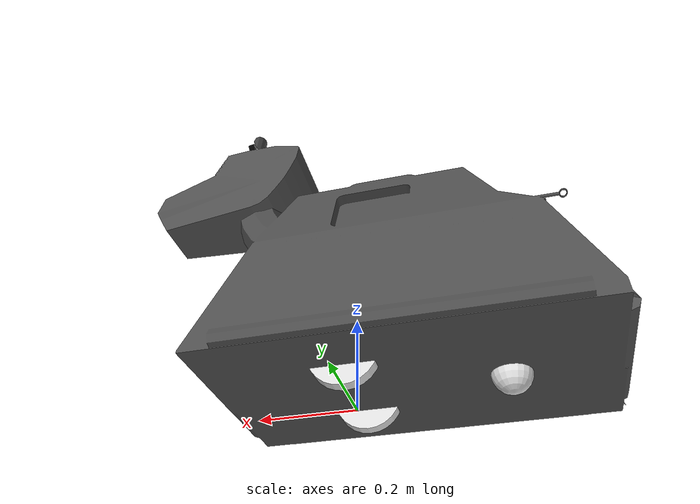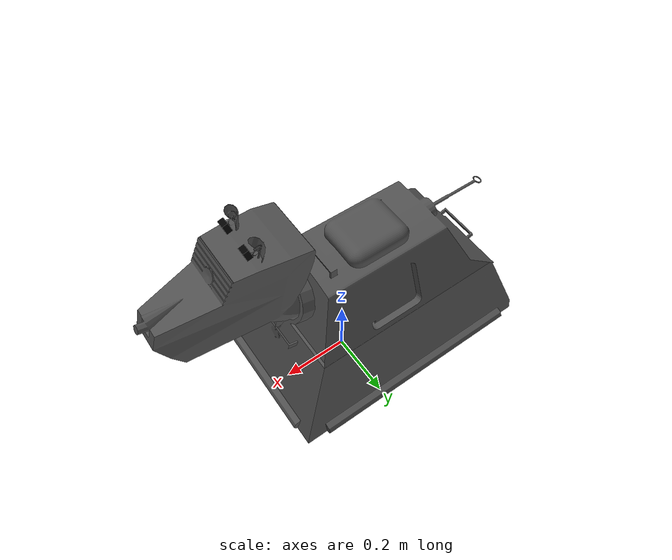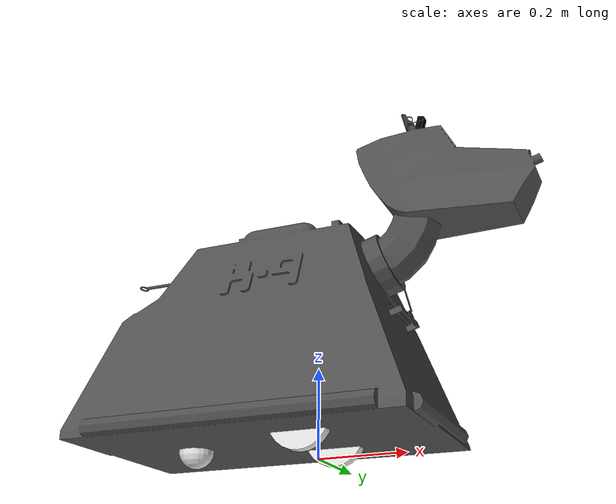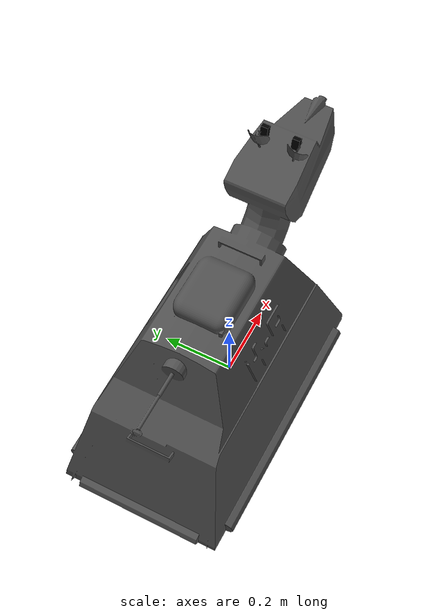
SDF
<sdf version='1.11'>
  <model name='k9_robot'>
    <link name='base_footprint'>
      <inertial>
        <pose>-0.044785740007202028 0 0.2252066258552394 0 0 0</pose>
        <mass>27.77</mass>
        <inertia>
          <ixx>0.8520626115808434</ixx>
          <ixy>0</ixy>
          <ixz>-0.033647700576161343</ixz>
          <iyy>2.5247111867338869</iyy>
          <iyz>0</iyz>
          <izz>1.773259575153042</izz>
        </inertia>
      </inertial>
      <collision name='base_footprint_fixed_joint_lump__base_link_collision'>
        <pose>0 0 0.50939999999999996 0 0 0</pose>
        <geometry>
          <box>
            <size>1.05 0.48999999999999999 0.73999999999999999</size>
          </box>
        </geometry>
      </collision>
      <collision name='base_footprint_fixed_joint_lump__ball_caster_link_collision_1'>
        <pose>-0.29999999999999999 0 0.040000000000000001 0 0 0</pose>
        <geometry>
          <sphere>
            <radius>0.040000000000000001</radius>
          </sphere>
        </geometry>
        <surface>
          <contact>
            <ode/>
          </contact>
          <friction>
            <ode>
              <mu>0.20000000000000001</mu>
              <mu2>0.20000000000000001</mu2>
            </ode>
          </friction>
        </surface>
      </collision>
      <collision name='base_footprint_fixed_joint_lump__battery_link_collision_2'>
        <pose>0 0 0.24940000000000001 0 0 0</pose>
        <geometry>
          <box>
            <size>0.25 0.20000000000000001 0.25</size>
          </box>
        </geometry>
      </collision>
      <collision name='base_footprint_fixed_joint_lump__motors_link_collision_3'>
        <pose>0 0 0.1694 0 0 0</pose>
        <geometry>
          <box>
            <size>0.20000000000000001 0.20000000000000001 0.10000000000000001</size>
          </box>
        </geometry>
      </collision>
      <visual name='base_footprint_fixed_joint_lump__base_link_visual'>
        <pose>-0.5 1.905 0 0 0 3.1415926535897931</pose>
        <geometry>
          <mesh>
            <scale>0.01 0.01 0.01</scale>
            <uri>file:///home/hopkira/Documents/GitHub/k9-gazebo/src/k9_description/urdf/k9.stl</uri>
          </mesh>
        </geometry>
        <material>
          <diffuse>0.3125 0.3125 0.3125 1</diffuse>
          <ambient>0.3125 0.3125 0.3125 1</ambient>
        </material>
      </visual>
      <visual name='base_footprint_fixed_joint_lump__ball_caster_link_visual_1'>
        <pose>-0.29999999999999999 0 0.040000000000000001 0 0 0</pose>
        <geometry>
          <sphere>
            <radius>0.040000000000000001</radius>
          </sphere>
        </geometry>
        <material>
          <diffuse>0.875 0.875 0.875 1</diffuse>
          <ambient>0.875 0.875 0.875 1</ambient>
        </material>
      </visual>
      <sensor name='ld06_lidar' type='gpu_lidar'>
        <update_rate>10</update_rate>
        <always_on>true</always_on>
        <topic>/ld06/scan</topic>
        <visualize>true</visualize>
        <lidar>
          <scan>
            <horizontal>
              <samples>360</samples>
              <min_angle>-3.1415899999999999</min_angle>
              <max_angle>3.1415899999999999</max_angle>
              <resolution>1</resolution>
            </horizontal>
          </scan>
          <range>
            <min>0.02</min>
            <max>12</max>
          </range>
        </lidar>
        <pose>-0.112 0 0.59940000000000004 0 0 0</pose>
        <gz_frame_id>base_laser</gz_frame_id>
        <frame_id>base_laser</frame_id>
      </sensor>
      <sensor name='imu_link_sensor' type='imu'>
        <topic>/k9/imu</topic>
        <always_on>true</always_on>
        <visualize>false</visualize>
        <update_rate>200</update_rate>
        <imu>
          <angular_velocity>
            <x>
              <noise type='gaussian'>
                <mean>0</mean>
                <stddev>0.001</stddev>
                <bias_mean>0</bias_mean>
                <bias_stddev>0</bias_stddev>
              </noise>
            </x>
            <y>
              <noise type='gaussian'>
                <mean>0</mean>
                <stddev>0.001</stddev>
                <bias_mean>0</bias_mean>
                <bias_stddev>0</bias_stddev>
              </noise>
            </y>
            <z>
              <noise type='gaussian'>
                <mean>0</mean>
                <stddev>0.001</stddev>
                <bias_mean>0</bias_mean>
                <bias_stddev>0</bias_stddev>
              </noise>
            </z>
          </angular_velocity>
          <linear_acceleration>
            <x>
              <noise type='gaussian'>
                <mean>0</mean>
                <stddev>0.01</stddev>
                <bias_mean>0</bias_mean>
                <bias_stddev>0</bias_stddev>
              </noise>
            </x>
            <y>
              <noise type='gaussian'>
                <mean>0</mean>
                <stddev>0.01</stddev>
                <bias_mean>0</bias_mean>
                <bias_stddev>0</bias_stddev>
              </noise>
            </y>
            <z>
              <noise type='gaussian'>
                <mean>0</mean>
                <stddev>0.01</stddev>
                <bias_mean>0</bias_mean>
                <bias_stddev>0</bias_stddev>
              </noise>
            </z>
          </linear_acceleration>
        </imu>
        <pose>0 0 0.22939999999999999 0 0 0</pose>
      </sensor>
      <sensor name='oakd_link_rgbd' type='rgbd_camera'>
        <always_on>true</always_on>
        <visualize>false</visualize>
        <update_rate>30</update_rate>
        <topic>/oak</topic>
        <camera>
          <horizontal_fov>1.3962634</horizontal_fov>
          <image>
            <width>640</width>
            <height>400</height>
          </image>
          <clip>
            <near>0.20000000000000001</near>
            <far>8</far>
          </clip>
          <noise>
            <type>gaussian</type>
            <mean>0</mean>
            <stddev>0.0030000000000000001</stddev>
          </noise>
        </camera>
        <pose>0.26000000000000001 0 0.32440000000000002 0 0 0</pose>
      </sensor>
    </link>
    <joint name='drivewhl_l_joint' type='revolute'>
      <pose relative_to='base_footprint'>0 0.1011 0.069400000000000003 0 0 0</pose>
      <parent>base_footprint</parent>
      <child>drivewhl_l_link</child>
      <axis>
        <xyz>0 1 0</xyz>
        <limit>
          <lower>-inf</lower>
          <upper>inf</upper>
        </limit>
        <dynamics>
          <damping>0.050000000000000003</damping>
          <friction>0</friction>
          <spring_reference>0</spring_reference>
          <spring_stiffness>0</spring_stiffness>
        </dynamics>
      </axis>
    </joint>
    <link name='drivewhl_l_link'>
      <pose relative_to='drivewhl_l_joint'>0 0 0 0 0 0</pose>
      <inertial>
        <pose>0 0 0 0 0 0</pose>
        <mass>1</mass>
        <inertia>
          <ixx>0.002</ixx>
          <ixy>0</ixy>
          <ixz>0</ixz>
          <iyy>0.002</iyy>
          <iyz>0</iyz>
          <izz>0.0040000000000000001</izz>
        </inertia>
      </inertial>
      <collision name='drivewhl_l_link_collision'>
        <pose>0 0 0 1.5707963267948959 0 0</pose>
        <geometry>
          <cylinder>
            <length>0.025000000000000001</length>
            <radius>0.069400000000000003</radius>
          </cylinder>
        </geometry>
        <surface>
          <contact>
            <ode/>
          </contact>
          <friction>
            <ode>
              <mu>0.90000000000000002</mu>
              <mu2>0.69999999999999996</mu2>
            </ode>
          </friction>
        </surface>
      </collision>
      <visual name='drivewhl_l_link_visual'>
        <pose>0 0 0 1.5707963267948959 0 0</pose>
        <geometry>
          <cylinder>
            <length>0.025000000000000001</length>
            <radius>0.069400000000000003</radius>
          </cylinder>
        </geometry>
        <material>
          <diffuse>0.875 0.875 0.875 1</diffuse>
          <ambient>0.875 0.875 0.875 1</ambient>
        </material>
      </visual>
    </link>
    <joint name='drivewhl_r_joint' type='revolute'>
      <pose relative_to='base_footprint'>0 -0.1011 0.069400000000000003 0 0 0</pose>
      <parent>base_footprint</parent>
      <child>drivewhl_r_link</child>
      <axis>
        <xyz>0 1 0</xyz>
        <limit>
          <lower>-inf</lower>
          <upper>inf</upper>
        </limit>
        <dynamics>
          <damping>0.050000000000000003</damping>
          <friction>0</friction>
          <spring_reference>0</spring_reference>
          <spring_stiffness>0</spring_stiffness>
        </dynamics>
      </axis>
    </joint>
    <link name='drivewhl_r_link'>
      <pose relative_to='drivewhl_r_joint'>0 0 0 0 0 0</pose>
      <inertial>
        <pose>0 0 0 0 0 0</pose>
        <mass>1</mass>
        <inertia>
          <ixx>0.002</ixx>
          <ixy>0</ixy>
          <ixz>0</ixz>
          <iyy>0.002</iyy>
          <iyz>0</iyz>
          <izz>0.0040000000000000001</izz>
        </inertia>
      </inertial>
      <collision name='drivewhl_r_link_collision'>
        <pose>0 0 0 1.5707963267948959 0 0</pose>
        <geometry>
          <cylinder>
            <length>0.025000000000000001</length>
            <radius>0.069400000000000003</radius>
          </cylinder>
        </geometry>
        <surface>
          <contact>
            <ode/>
          </contact>
          <friction>
            <ode>
              <mu>0.90000000000000002</mu>
              <mu2>0.69999999999999996</mu2>
            </ode>
          </friction>
        </surface>
      </collision>
      <visual name='drivewhl_r_link_visual'>
        <pose>0 0 0 1.5707963267948959 0 0</pose>
        <geometry>
          <cylinder>
            <length>0.025000000000000001</length>
            <radius>0.069400000000000003</radius>
          </cylinder>
        </geometry>
        <material>
          <diffuse>0.875 0.875 0.875 1</diffuse>
          <ambient>0.875 0.875 0.875 1</ambient>
        </material>
      </visual>
    </link>
    <joint name='l_ear_joint' type='revolute'>
      <pose relative_to='base_footprint'>0.27000000000000002 0.042500000000000003 0.73940000000000006 0 0.25000000000000017 0</pose>
      <parent>base_footprint</parent>
      <child>l_ear_link</child>
      <axis>
        <xyz>0 0 1</xyz>
        <limit>
          <lower>-0.20000000000000001</lower>
          <upper>0.59999999999999998</upper>
          <effort>2</effort>
          <velocity>10</velocity>
        </limit>
        <dynamics>
          <damping>0.01</damping>
          <friction>0.01</friction>
          <spring_reference>0</spring_reference>
          <spring_stiffness>0</spring_stiffness>
        </dynamics>
      </axis>
    </joint>
    <link name='l_ear_link'>
      <pose relative_to='l_ear_joint'>0 0 0 0 0 0</pose>
      <inertial>
        <pose>0 0 0 0 0 0</pose>
        <mass>0.050000000000000003</mass>
        <inertia>
          <ixx>0.0001</ixx>
          <ixy>0</ixy>
          <ixz>0</ixz>
          <iyy>0.0001</iyy>
          <iyz>0</iyz>
          <izz>0.0001</izz>
        </inertia>
      </inertial>
      <visual name='l_ear_link_fixed_joint_lump__l_ear_visual_visual'>
        <pose>0 0 0 0 0 0</pose>
        <geometry>
          <box>
            <size>0.014999999999999999 0.02 0.029999999999999999</size>
          </box>
        </geometry>
        <material>
          <diffuse>0 0 0 1</diffuse>
          <ambient>0 0 0 1</ambient>
        </material>
      </visual>
      <sensor name='l_ear_tof' type='gpu_lidar'>
        <pose>0.0074999999999999997 0 0 0 0 0</pose>
        <update_rate>30</update_rate>
        <always_on>true</always_on>
        <visualize>true</visualize>
        <topic>/l_ear/scan</topic>
        <lidar>
          <scan>
            <horizontal>
              <samples>1</samples>
              <resolution>1</resolution>
              <min_angle>0</min_angle>
              <max_angle>0</max_angle>
            </horizontal>
          </scan>
          <range>
            <min>0.02</min>
            <max>2</max>
            <resolution>0.001</resolution>
          </range>
        </lidar>
        <gz_frame_id>l_ear_link</gz_frame_id>
        <frame_id>l_ear_link</frame_id>
      </sensor>
    </link>
    <joint name='r_ear_joint' type='revolute'>
      <pose relative_to='base_footprint'>0.27000000000000002 -0.042500000000000003 0.73940000000000006 0 0.25000000000000017 0</pose>
      <parent>base_footprint</parent>
      <child>r_ear_link</child>
      <axis>
        <xyz>0 0 1</xyz>
        <limit>
          <lower>-0.59999999999999998</lower>
          <upper>0.20000000000000001</upper>
          <effort>2</effort>
          <velocity>10</velocity>
        </limit>
        <dynamics>
          <damping>0.01</damping>
          <friction>0.01</friction>
          <spring_reference>0</spring_reference>
          <spring_stiffness>0</spring_stiffness>
        </dynamics>
      </axis>
    </joint>
    <link name='r_ear_link'>
      <pose relative_to='r_ear_joint'>0 0 0 0 0 0</pose>
      <inertial>
        <pose>0 0 0 0 0 0</pose>
        <mass>0.050000000000000003</mass>
        <inertia>
          <ixx>0.0001</ixx>
          <ixy>0</ixy>
          <ixz>0</ixz>
          <iyy>0.0001</iyy>
          <iyz>0</iyz>
          <izz>0.0001</izz>
        </inertia>
      </inertial>
      <visual name='r_ear_link_fixed_joint_lump__r_ear_visual_visual'>
        <pose>0 0 0 0 0 0</pose>
        <geometry>
          <box>
            <size>0.014999999999999999 0.02 0.029999999999999999</size>
          </box>
        </geometry>
        <material>
          <diffuse>0 0 0 1</diffuse>
          <ambient>0 0 0 1</ambient>
        </material>
      </visual>
      <sensor name='r_ear_tof' type='gpu_lidar'>
        <pose>0.0074999999999999997 0 0 0 0 0</pose>
        <update_rate>30</update_rate>
        <always_on>true</always_on>
        <visualize>true</visualize>
        <topic>/r_ear/scan</topic>
        <lidar>
          <scan>
            <horizontal>
              <samples>1</samples>
              <resolution>1</resolution>
              <min_angle>0</min_angle>
              <max_angle>0</max_angle>
            </horizontal>
          </scan>
          <range>
            <min>0.02</min>
            <max>2</max>
            <resolution>0.001</resolution>
          </range>
        </lidar>
        <gz_frame_id>r_ear_link</gz_frame_id>
        <frame_id>r_ear_link</frame_id>
      </sensor>
    </link>
    <plugin name='gz::sim::systems::DiffDrive' filename='gz-sim-diff-drive-system'>
      <left_joint>drivewhl_l_joint</left_joint>
      <right_joint>drivewhl_r_joint</right_joint>
      <wheel_separation>0.2022</wheel_separation>
      <wheel_radius>0.0694</wheel_radius>
      <max_linear_velocity>1.4</max_linear_velocity>
      <max_angular_velocity>0.63</max_angular_velocity>
      <max_linear_acceleration>0.28</max_linear_acceleration>
      <max_angular_acceleration>0.21</max_angular_acceleration>
      <topic>/cmd_vel</topic>
      <odom_topic>/odom</odom_topic>
      <frame_id>odom</frame_id>
      <child_frame_id>base_footprint</child_frame_id>
    </plugin>
    <plugin name='gz_ros2_control::GazeboSimROS2ControlPlugin' filename='/opt/ros/jazzy/lib/libgz_ros2_control-system.so'>
      <parameters>/home/hopkira/Documents/GitHub/k9-gazebo/src/k9_robot/src/description/ear_controllers.yaml</parameters>
    </plugin>
    <frame name='3dcam_joint' attached_to='base_link'>
      <pose>0.20599999999999999 0 0.255 0 0 0</pose>
    </frame>
    <frame name='3dcam_link' attached_to='3dcam_joint'>
      <pose>0 0 0 0 0 0</pose>
    </frame>
    <frame name='ball_caster_joint' attached_to='base_link'>
      <pose>-0.29999999999999999 0 -0.029399999999999999 0 0 0</pose>
    </frame>
    <frame name='ball_caster_link' attached_to='ball_caster_joint'>
      <pose>0 0 0 0 0 0</pose>
    </frame>
    <frame name='base_laser_joint' attached_to='base_link'>
      <pose>-0.112 0 0.53000000000000003 0 0 0</pose>
    </frame>
    <frame name='base_laser' attached_to='base_laser_joint'>
      <pose>0 0 0 0 0 0</pose>
    </frame>
    <frame name='battery_joint' attached_to='base_link'>
      <pose>0 0 0.17999999999999999 0 0 0</pose>
    </frame>
    <frame name='battery_link' attached_to='battery_joint'>
      <pose>0 0 0 0 0 0</pose>
    </frame>
    <frame name='eyecam_joint' attached_to='base_link'>
      <pose>0.36599999999999999 0 0.67000000000000004 0 0 0</pose>
    </frame>
    <frame name='eyecam_link' attached_to='eyecam_joint'>
      <pose>0 0 0 0 0 0</pose>
    </frame>
    <frame name='imu_link_joint' attached_to='base_link'>
      <pose>0 0 0.16 0 0 0</pose>
    </frame>
    <frame name='imu_link' attached_to='imu_link_joint'>
      <pose>0 0 0 0 0 0</pose>
    </frame>
    <frame name='motors_joint' attached_to='base_link'>
      <pose>0 0 0.10000000000000001 0 0 0</pose>
    </frame>
    <frame name='motors_link' attached_to='motors_joint'>
      <pose>0 0 0 0 0 0</pose>
    </frame>
    <frame name='camera_depth_frame_joint' attached_to='oakd_link'>
      <pose>0 0 0 -1.5707963267948959 -5.5511151231257827e-17 -1.5707963267948959</pose>
    </frame>
    <frame name='camera_depth_frame' attached_to='camera_depth_frame_joint'>
      <pose>0 0 0 0 0 0</pose>
    </frame>
    <frame name='oakd_link_joint' attached_to='base_link'>
      <pose>0.26000000000000001 0 0.255 0 0 0</pose>
    </frame>
    <frame name='oakd_link' attached_to='oakd_link_joint'>
      <pose>0 0 0 0 0 0</pose>
    </frame>
    <frame name='base_joint' attached_to='base_footprint'>
      <pose>0 0 0.069400000000000003 0 0 0</pose>
    </frame>
    <frame name='base_link' attached_to='base_joint'>
      <pose>0 0 0 0 0 0</pose>
    </frame>
  </model>
</sdf>
